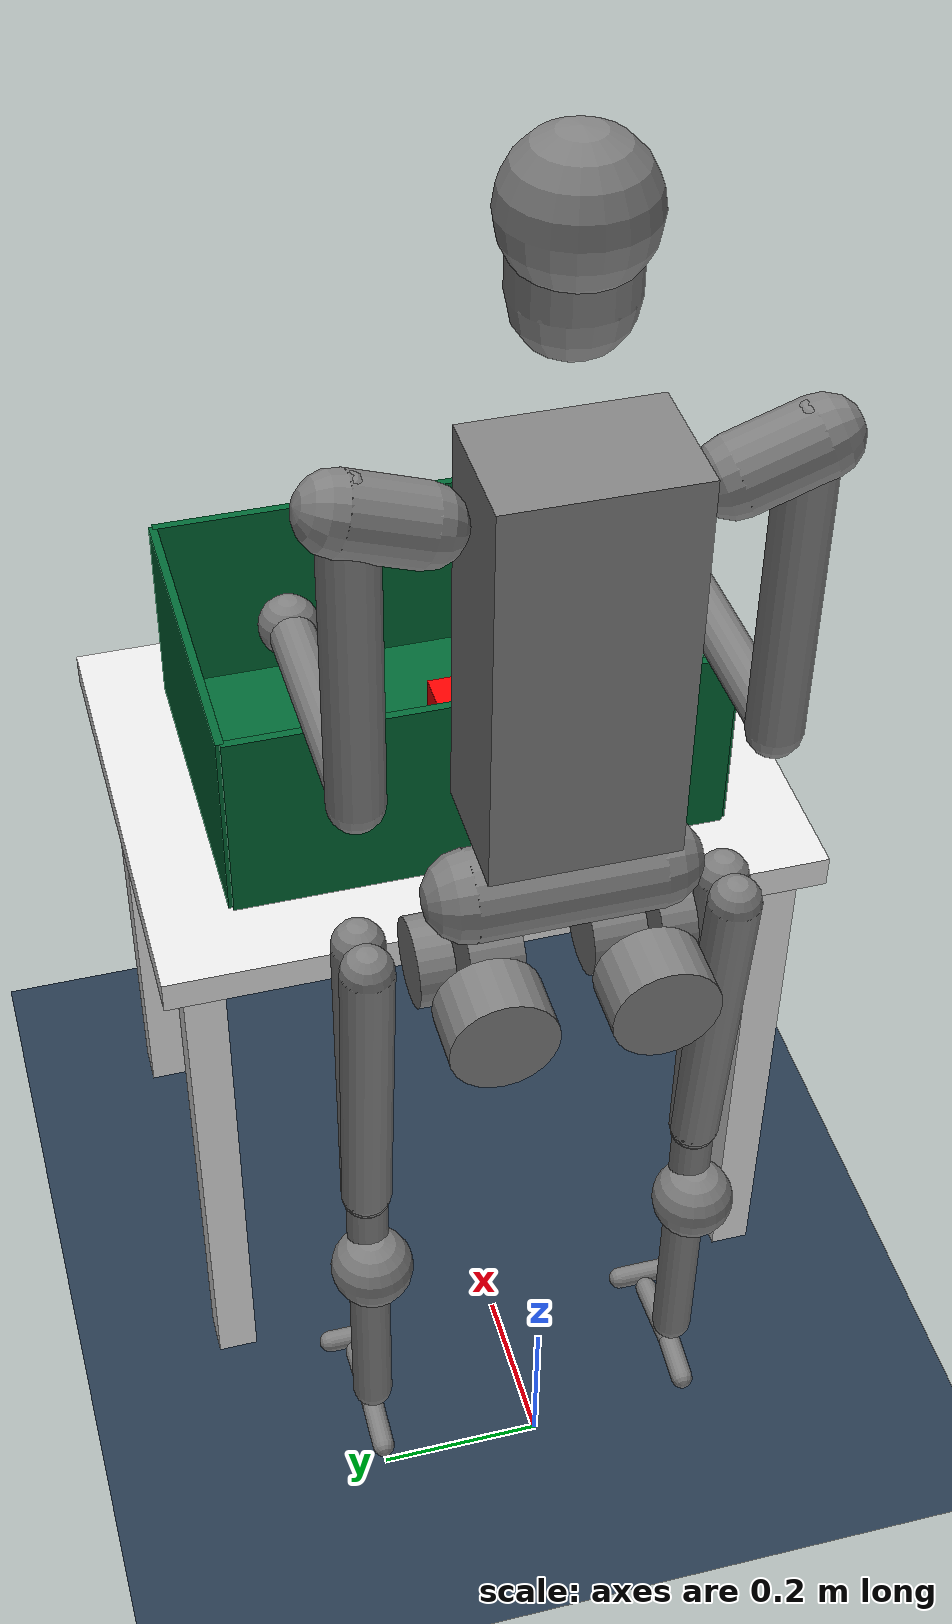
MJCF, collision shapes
<?xml version="1.0" encoding="utf-8"?>
<mujoco model="h1 scene">
    <include file="h1.xml"/>

    <statistic center="0 0 1" extent="1.8"/>

    <visual>
        <headlight diffuse="0.6 0.6 0.6" ambient="0.3 0.3 0.3" specular="0 0 0"/>
        <rgba haze="0.15 0.25 0.35 1"/>
        <global azimuth="160" elevation="-20"/>
    </visual>

    <asset>
        <texture name="grid" type="2d" builtin="checker" rgb1=".2 .3 .4" rgb2=".1 0.15 0.2" width="512" height="512"
                 mark="cross" markrgb=".8 .8 .8"/>
        <material name="grid" texture="grid" texrepeat="1 1" texuniform="true"/>
        <material name="deep_green" rgba="0.0 0.4 0.2 1"/>
        <material name="white_desk" rgba="0.9 0.9 0.9 1"/>
    </asset>

    <worldbody>
        <light pos="0 0 3" directional="true"/>
        <geom name="floor" size="1 1 0.01" type="plane" material="grid"/>

        <!-- White Desk - rotated 90 degrees (quat: "0.7071 0 0 0.7071" represents 90-degree rotation around Z) -->
        <body name="desk" pos="0.5 0 0" quat="0.7071 0 0 0.7071">
            <!-- Desk Top -->
            <geom type="box"
                  size="0.4 0.3 0.02"
                  pos="0 0 0.73"
                  material="white_desk"/>

            <!-- Desk Legs -->
            <geom type="box"
                  size="0.025 0.025 0.35"
                  pos="0.35 0.25 0.35"
                  material="white_desk"/>
            <geom type="box"
                  size="0.025 0.025 0.35"
                  pos="0.35 -0.25 0.35"
                  material="white_desk"/>
            <geom type="box"
                  size="0.025 0.025 0.35"
                  pos="-0.35 0.25 0.35"
                  material="white_desk"/>
            <geom type="box"
                  size="0.025 0.025 0.35"
                  pos="-0.35 -0.25 0.35"
                  material="white_desk"/>

            <!-- Tray on desk -->
            <body name="tray" pos="0 0 0.88">
                <!-- Bottom of tray -->
                <geom type="box"
                      size="0.2975 0.2025 0.005"
                      pos="0 0 -0.12"
                      material="deep_green"/>

                <!-- Front wall -->
                <geom type="box"
                      size="0.2975 0.005 0.125"
                      pos="0 -0.2025 0"
                      material="deep_green"/>

                <!-- Back wall -->
                <geom type="box"
                      size="0.2975 0.005 0.125"
                      pos="0 0.2025 0"
                      material="deep_green"/>

                <!-- Left wall -->
                <geom type="box"
                      size="0.005 0.2025 0.125"
                      pos="-0.2975 0 0"
                      material="deep_green"/>

                <!-- Right wall -->
                <geom type="box"
                      size="0.005 0.2025 0.125"
                      pos="0.2975 0 0"
                      material="deep_green"/>
            </body>
        </body>

        <body name="com_target" pos="0.5 0 .5" mocap="true">
            <geom type="sphere" size=".08" contype="0" conaffinity="0" rgba=".6 .3 .3 .2"/>
            <site type="sphere" size="0.01" rgba="0 0 1 1" group="1"/>
        </body>
        <body name="left_wrist_target" pos="0.5 0 .5" quat="0 1 0 0" mocap="true">
            <geom type="sphere" size=".06" contype="0" conaffinity="0" rgba=".6 .3 .3 .2"/>
            <site type="sphere" size="0.01" rgba="0 0 1 1" group="1"/>
        </body>
        <body name="right_wrist_target" pos="0.5 0 .5" quat="0 1 0 0" mocap="true">
            <geom type="sphere" size=".06" contype="0" conaffinity="0" rgba=".6 .3 .3 .2"/>
            <site type="sphere" size="0.01" rgba="0 0 1 1" group="1"/>
        </body>
        <body name="left_foot_target" pos="0.5 0 .5" quat="0 1 0 0" mocap="true">
            <geom type="box" size=".04 .04 .04" contype="0" conaffinity="0" rgba=".6 .3 .3 .2"/>
            <site type="sphere" size="0.01" rgba="0 0 1 1" group="1"/>
        </body>
        <body name="right_foot_target" pos="0.5 0 .5" quat="0 1 0 0" mocap="true">
            <geom type="box" size=".04 .04 .04" contype="0" conaffinity="0" rgba=".6 .3 .3 .2"/>
            <site type="sphere" size="0.01" rgba="0 0 1 1" group="1"/>
        </body>
        <body name="cube1" pos="0.4 0 0.9">
            <joint name="cube1_free" type="free"/>
            <geom type="box" name="cube1" size="0.03 0.03 0.03" condim="3" friction="1 .03 .003" rgba="1 0 0 1"
                  contype="1" conaffinity="1" solref="0.01 1" mass="0.15"/>
        </body>
    </worldbody>

    <keyframe>
        <key name="stand"
             qpos="
    0 0 -0.4 0.8 -0.4
    0 0 -0.4 0.8 -0.4
    0
    0 0 0 0
    0 0 0 0
    0.4 0 0.9 0 0 0 0"/>
    </keyframe>
</mujoco>

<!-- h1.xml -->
<mujoco model="h1">
  <compiler angle="radian" meshdir="assets" autolimits="true"/>

  <statistic meansize="0.05"/>

  <default>
    <default class="h1">
      <joint damping="1" armature="0.1"/>
      <default class="visual">
        <geom type="mesh" contype="0" conaffinity="0" group="2" material="black"/>
      </default>
      <default class="collision">
        <geom group="3" mass="0" density="0"/>
        <default class="foot">
          <geom type="capsule" size=".014"/>
          <default class="foot1">
            <geom fromto="-.035 0 -0.056 .02 0 -0.045"/>
          </default>
          <default class="foot2">
            <geom fromto=".02 0 -0.045 .115 0 -0.056"/>
          </default>
          <default class="foot3">
            <geom fromto=".14 -.03 -0.056 .14 .03 -0.056"/>
          </default>
        </default>
      </default>
      <site size="0.01" rgba="1 0 0 1" group="4"/>
    </default>
  </default>

  <asset>
    <material name="black" rgba="0.1 0.1 0.1 1"/>
    <material name="white" rgba="1 1 1 1"/>

    <mesh file="pelvis.stl"/>
    <mesh file="left_hip_yaw_link.stl"/>
    <mesh file="left_hip_roll_link.stl"/>
    <mesh file="left_hip_pitch_link.stl"/>
    <mesh file="left_knee_link.stl"/>
    <mesh file="left_ankle_link.stl"/>
    <mesh file="right_hip_yaw_link.stl"/>
    <mesh file="right_hip_roll_link.stl"/>
    <mesh file="right_hip_pitch_link.stl"/>
    <mesh file="right_knee_link.stl"/>
    <mesh file="right_ankle_link.stl"/>
    <mesh file="torso_link.stl"/>
    <mesh file="left_shoulder_pitch_link.stl"/>
    <mesh file="left_shoulder_roll_link.stl"/>
    <mesh file="left_shoulder_yaw_link.stl"/>
    <mesh file="left_elbow_link.stl"/>
    <mesh file="right_shoulder_pitch_link.stl"/>
    <mesh file="right_shoulder_roll_link.stl"/>
    <mesh file="right_shoulder_yaw_link.stl"/>
    <mesh file="right_elbow_link.stl"/>
    <mesh file="logo_link.stl"/>
  </asset>

  <worldbody>
    <light mode="targetbodycom" target="torso_link" pos="2 0 2.5"/>
    <body name="pelvis" pos="0 0 1.06" childclass="h1">
      <inertial pos="-0.0002 4e-05 -0.04522" quat="0.498303 0.499454 -0.500496 0.501741" mass="5.39"
        diaginertia="0.0490211 0.0445821 0.00824619"/>
      <geom class="visual" mesh="pelvis"/>
      <body name="left_hip_yaw_link" pos="0 0.0875 -0.1742">
        <inertial pos="-0.04923 0.0001 0.0072" quat="0.69699 0.219193 0.233287 0.641667" mass="2.244"
          diaginertia="0.00304494 0.00296885 0.00189201"/>
        <joint name="left_hip_yaw" axis="0 0 1" range="-0.43 0.43"/>
        <geom class="visual" mesh="left_hip_yaw_link"/>
        <geom size="0.06 0.035" pos="-0.067 0 0" quat="0.707123 0 0.70709 0" type="cylinder" class="collision"/>
        <body name="left_hip_roll_link" pos="0.039468 0 0">
          <inertial pos="-0.0058 -0.00319 -9e-05" quat="0.0438242 0.70721 -0.0729075 0.701867" mass="2.232"
            diaginertia="0.00243264 0.00225325 0.00205492"/>
          <joint name="left_hip_roll" axis="1 0 0" range="-0.43 0.43"/>
          <geom class="visual" mesh="left_hip_roll_link"/>
          <geom class="collision" type="cylinder" size="0.05 0.03" quat="1 1 0 0" pos="0 -0.02 0"/>
          <body name="left_hip_pitch_link" pos="0 0.11536 0">
            <inertial pos="0.00746 -0.02346 -0.08193" quat="0.979828 0.0513522 -0.0169854 -0.192382" mass="4.152"
              diaginertia="0.0829503 0.0821457 0.00510909"/>
            <joint name="left_hip_pitch" axis="0 1 0" range="-1.57 1.57"/>
            <geom class="visual" mesh="left_hip_pitch_link"/>
            <geom class="collision" type="capsule" size="0.03" fromto="0.02 0 -0.4 -0.02 0 0.02"/>
            <geom class="collision" type="capsule" size="0.03" fromto="0.02 0 -0.4 0.02 0 0.02"/>
            <geom class="collision" type="cylinder" size="0.05 0.02" quat="1 1 0 0" pos="0 -0.07 0"/>
            <body name="left_knee_link" pos="0 0 -0.4">
              <inertial pos="-0.00136 -0.00512 -0.1384" quat="0.626132 -0.034227 -0.0416277 0.777852" mass="1.721"
                diaginertia="0.0125237 0.0123104 0.0019428"/>
              <joint name="left_knee" axis="0 1 0" range="-0.26 2.05"/>
              <geom class="visual" mesh="left_knee_link"/>
              <geom class="collision" type="capsule" size="0.025" fromto="0.02 0 -0.4 0.02 0 0"/>
              <geom class="collision" type="sphere" size="0.05" pos="0 0 -0.115"/>
              <body name="left_ankle_link" pos="0 0 -0.4">
                <inertial pos="0.06722 0.00015 -0.04497" quat="0.489101 0.503197 0.565782 0.432972" mass="0.446"
                  diaginertia="0.00220848 0.00218961 0.000214202"/>
                <joint name="left_ankle" axis="0 1 0" range="-0.87 0.52"/>
                <geom class="visual" mesh="left_ankle_link"/>
                <geom class="foot1"/>
                <geom class="foot2"/>
                <geom class="foot3"/>
                <site name="left_foot" pos="0.15 0 -0.05"/>
              </body>
            </body>
          </body>
        </body>
      </body>
      <body name="right_hip_yaw_link" pos="0 -0.0875 -0.1742">
        <inertial pos="-0.04923 -0.0001 0.0072" quat="0.641667 0.233287 0.219193 0.69699" mass="2.244"
          diaginertia="0.00304494 0.00296885 0.00189201"/>
        <joint name="right_hip_yaw" axis="0 0 1" range="-0.43 0.43"/>
        <geom class="visual" mesh="right_hip_yaw_link"/>
        <geom size="0.06 0.035" pos="-0.067 0 0" quat="0.707123 0 0.70709 0" type="cylinder" class="collision"/>
        <body name="right_hip_roll_link" pos="0.039468 0 0">
          <inertial pos="-0.0058 0.00319 -9e-05" quat="-0.0438242 0.70721 0.0729075 0.701867" mass="2.232"
            diaginertia="0.00243264 0.00225325 0.00205492"/>
          <joint name="right_hip_roll" axis="1 0 0" range="-0.43 0.43"/>
          <geom class="visual" mesh="right_hip_roll_link"/>
          <geom class="collision" type="cylinder" size="0.05 0.03" quat="1 1 0 0" pos="0 0.02 0"/>
          <body name="right_hip_pitch_link" pos="0 -0.11536 0">
            <inertial pos="0.00746 0.02346 -0.08193" quat="0.979828 -0.0513522 -0.0169854 0.192382" mass="4.152"
              diaginertia="0.0829503 0.0821457 0.00510909"/>
            <joint name="right_hip_pitch" axis="0 1 0" range="-1.57 1.57"/>
            <geom class="visual" mesh="right_hip_pitch_link"/>
            <geom class="collision" type="capsule" size="0.03" fromto="0.02 0 -0.4 -0.02 0 0.02"/>
            <geom class="collision" type="capsule" size="0.03" fromto="0.02 0 -0.4 0.02 0 0.02"/>
            <geom class="collision" type="cylinder" size="0.05 0.02" quat="1 1 0 0" pos="0 0.07 0"/>
            <body name="right_knee_link" pos="0 0 -0.4">
              <inertial pos="-0.00136 0.00512 -0.1384" quat="0.777852 -0.0416277 -0.034227 0.626132" mass="1.721"
                diaginertia="0.0125237 0.0123104 0.0019428"/>
              <joint name="right_knee" axis="0 1 0" range="-0.26 2.05"/>
              <geom class="visual" mesh="right_knee_link"/>
              <geom class="collision" type="capsule" size="0.025" fromto="0.02 0 -0.4 0.02 0 0"/>
              <geom class="collision" type="sphere" size="0.05" pos="0 0 -0.115"/>
              <body name="right_ankle_link" pos="0 0 -0.4">
                <inertial pos="0.06722 -0.00015 -0.04497" quat="0.432972 0.565782 0.503197 0.489101" mass="0.446"
                  diaginertia="0.00220848 0.00218961 0.000214202"/>
                <joint name="right_ankle" axis="0 1 0" range="-0.87 0.52"/>
                <geom class="visual" mesh="right_ankle_link"/>
                <geom class="foot1"/>
                <geom class="foot2"/>
                <geom class="foot3"/>
                <site name="right_foot" pos="0.15 0 -0.05"/>
              </body>
            </body>
          </body>
        </body>
      </body>
      <body name="torso_link">
        <inertial pos="0.000489 0.002797 0.20484" quat="0.999989 -0.00130808 -0.00282289 -0.00349105" mass="17.789"
          diaginertia="0.487315 0.409628 0.127837"/>
        <joint name="torso" axis="0 0 1" range="-2.35 2.35"/>
        <geom class="visual" mesh="torso_link"/>
        <geom class="visual" material="white" mesh="logo_link"/>
        <geom name="head" class="collision" type="capsule" size="0.06" fromto="0.05 0 0.68 0.05 0 0.6"/>
        <geom name="helmet" class="collision" type="sphere" size="0.073" pos="0.045 0 0.68"/>
        <geom name="torso" class="collision" type="box" size="0.07 0.1 0.22" pos="0 0 0.25"/>
        <geom name="hip" class="collision" type="capsule" size="0.05" fromto="0 -0.1 -0.05 0 0.1 -0.05"/>
        <site name="imu" pos="-0.04452 -0.01891 0.27756"/>
        <body name="left_shoulder_pitch_link" pos="0.0055 0.15535 0.42999" quat="0.976296 0.216438 0 0">
          <inertial pos="0.005045 0.053657 -0.015715" quat="0.814858 0.579236 -0.0201072 -0.00936488" mass="1.033"
            diaginertia="0.00129936 0.000987113 0.000858198"/>
          <joint name="left_shoulder_pitch" axis="0 1 0" range="-2.87 2.87"/>
          <geom class="visual" mesh="left_shoulder_pitch_link"/>
          <body name="left_shoulder_roll_link" pos="-0.0055 0.0565 -0.0165" quat="0.976296 -0.216438 0 0">
            <inertial pos="0.000679 0.00115 -0.094076" quat="0.732491 0.00917179 0.0766656 0.676384" mass="0.793"
              diaginertia="0.00170388 0.00158256 0.00100336"/>
            <joint name="left_shoulder_roll" axis="1 0 0" range="-0.34 3.11"/>
            <geom class="visual" mesh="left_shoulder_roll_link"/>
            <geom name="left_shoulder" class="collision" type="capsule" size="0.04" fromto="0 0.01 0.008 0 -0.07 -0.02"/>
            <body name="left_shoulder_yaw_link" pos="0 0 -0.1343">
              <inertial pos="0.01365 0.002767 -0.16266" quat="0.703042 -0.0331229 -0.0473362 0.708798" mass="0.839"
                diaginertia="0.00408038 0.00370367 0.000622687"/>
              <joint name="left_shoulder_yaw" axis="0 0 1" range="-1.3 4.45"/>
              <geom class="visual" mesh="left_shoulder_yaw_link"/>
              <geom class="collision" type="capsule" size="0.03" fromto="0 0 0.15 0 0 -0.2"/>
              <body name="left_elbow_link" pos="0.0185 0 -0.198">
                <inertial pos="0.15908 -0.000144 -0.015776" quat="0.0765232 0.720327 0.0853116 0.684102" mass="0.669"
                  diaginertia="0.00601829 0.00600579 0.000408305"/>
                <joint name="left_elbow" axis="0 1 0" range="-1.25 2.61"/>
                <geom class="visual" mesh="left_elbow_link"/>
                <geom class="collision" type="capsule" size="0.025" fromto="0 0 0 0.28 0 -0.015"/>
                <geom class="collision" type="sphere" size="0.033" pos="0.28 0 -0.015"/>
                <site name="left_wrist" pos="0.2605 0 -0.0185"/>
              </body>
            </body>
          </body>
        </body>
        <body name="right_shoulder_pitch_link" pos="0.0055 -0.15535 0.42999" quat="0.976296 -0.216438 0 0">
          <inertial pos="0.005045 -0.053657 -0.015715" quat="0.579236 0.814858 0.00936488 0.0201072" mass="1.033"
            diaginertia="0.00129936 0.000987113 0.000858198"/>
          <joint name="right_shoulder_pitch" axis="0 1 0" range="-2.87 2.87"/>
          <geom class="visual" mesh="right_shoulder_pitch_link"/>
          <body name="right_shoulder_roll_link" pos="-0.0055 -0.0565 -0.0165" quat="0.976296 0.216438 0 0">
            <inertial pos="0.000679 -0.00115 -0.094076" quat="0.676384 0.0766656 0.00917179 0.732491" mass="0.793"
              diaginertia="0.00170388 0.00158256 0.00100336"/>
            <joint name="right_shoulder_roll" axis="1 0 0" range="-3.11 0.34"/>
            <geom class="visual" mesh="right_shoulder_roll_link"/>
            <geom name="right_shoulder" class="collision" type="capsule" size="0.04" fromto="0 -0.01 0.008 0 0.07 -0.02"/>
            <body name="right_shoulder_yaw_link" pos="0 0 -0.1343">
              <inertial pos="0.01365 -0.002767 -0.16266" quat="0.708798 -0.0473362 -0.0331229 0.703042" mass="0.839"
                diaginertia="0.00408038 0.00370367 0.000622687"/>
              <joint name="right_shoulder_yaw" axis="0 0 1" range="-4.45 1.3"/>
              <geom class="visual" mesh="right_shoulder_yaw_link"/>
              <geom class="collision" type="capsule" size="0.03" fromto="0 0 0.15 0 0 -0.2"/>
              <body name="right_elbow_link" pos="0.0185 0 -0.198">
                <inertial pos="0.15908 0.000144 -0.015776" quat="-0.0765232 0.720327 -0.0853116 0.684102" mass="0.669"
                  diaginertia="0.00601829 0.00600579 0.000408305"/>
                <joint name="right_elbow" axis="0 1 0" range="-1.25 2.61"/>
                <geom class="visual" mesh="right_elbow_link"/>
                <geom class="collision" type="capsule" size="0.025" fromto="0 0 0 0.28 0 -0.015"/>
                <geom class="collision" type="sphere" size="0.033" pos="0.28 0 -0.015"/>
                <site name="right_wrist" pos="0.2605 0 -0.0185"/>
              </body>
            </body>
          </body>
        </body>
      </body>
    </body>
  </worldbody>

  <contact>
    <exclude body1="torso_link" body2="left_shoulder_roll_link"/>
    <exclude body1="torso_link" body2="right_shoulder_roll_link"/>
  </contact>

  <actuator>
    <motor class="h1" name="left_hip_yaw" joint="left_hip_yaw" ctrlrange="-200 200"/>
    <motor class="h1" name="left_hip_roll" joint="left_hip_roll" ctrlrange="-200 200"/>
    <motor class="h1" name="left_hip_pitch" joint="left_hip_pitch" ctrlrange="-200 200"/>
    <motor class="h1" name="left_knee" joint="left_knee" ctrlrange="-300 300"/>
    <motor class="h1" name="left_ankle" joint="left_ankle" ctrlrange="-40 40"/>

    <motor class="h1" name="right_hip_yaw" joint="right_hip_yaw" ctrlrange="-200 200"/>
    <motor class="h1" name="right_hip_roll" joint="right_hip_roll" ctrlrange="-200 200"/>
    <motor class="h1" name="right_hip_pitch" joint="right_hip_pitch" ctrlrange="-200 200"/>
    <motor class="h1" name="right_knee" joint="right_knee" ctrlrange="-300 300"/>
    <motor class="h1" name="right_ankle" joint="right_ankle" ctrlrange="-40 40"/>

    <motor class="h1" name="torso" joint="torso" ctrlrange="-200 200"/>

    <motor class="h1" name="left_shoulder_pitch" joint="left_shoulder_pitch" ctrlrange="-40 40"/>
    <motor class="h1" name="left_shoulder_roll" joint="left_shoulder_roll" ctrlrange="-40 40"/>
    <motor class="h1" name="left_shoulder_yaw" joint="left_shoulder_yaw" ctrlrange="-18 18"/>
    <motor class="h1" name="left_elbow" joint="left_elbow" ctrlrange="-18 18"/>

    <motor class="h1" name="right_shoulder_pitch" joint="right_shoulder_pitch" ctrlrange="-40 40"/>
    <motor class="h1" name="right_shoulder_roll" joint="right_shoulder_roll" ctrlrange="-40 40"/>
    <motor class="h1" name="right_shoulder_yaw" joint="right_shoulder_yaw" ctrlrange="-18 18"/>
    <motor class="h1" name="right_elbow" joint="right_elbow" ctrlrange="-18 18"/>
  </actuator>
</mujoco>
